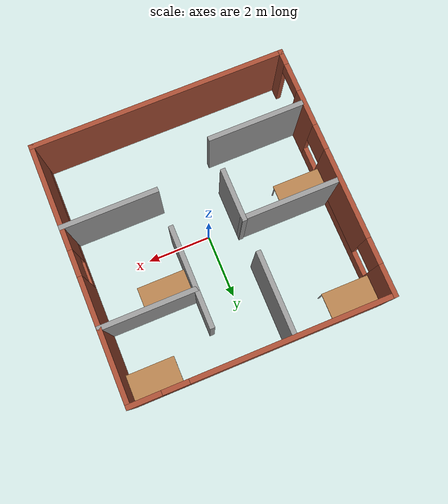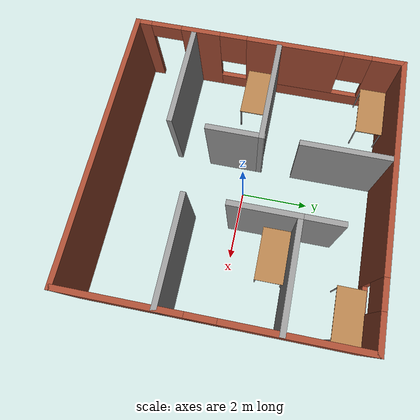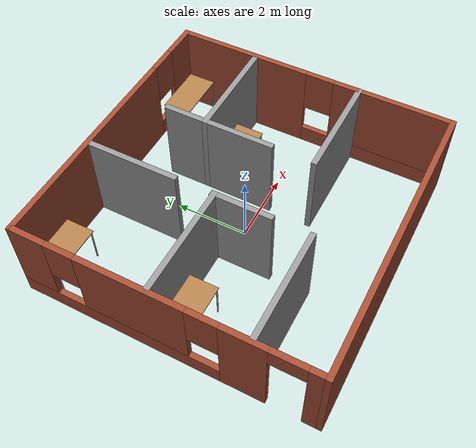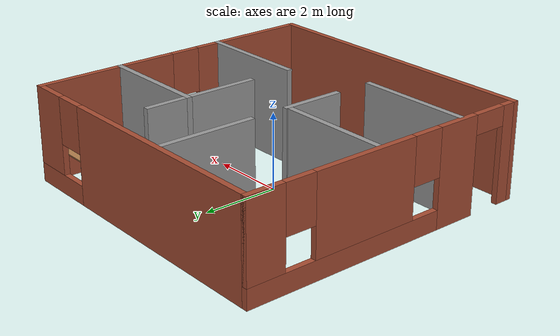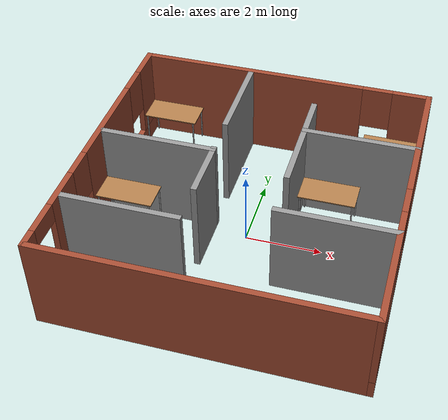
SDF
<sdf version="1.7">
 <model name="office">
  <link name="Wall_1">
   <pose>-0.000184 -3.925 0 0 -0 0</pose>
   <visual name="Wall_1_Visual">
    <pose>0 0 1.25 0 -0 0</pose>
    <geometry><box><size>8 0.15 2.5</size></box></geometry>
    <material>
     <script><uri>file://media/materials/scripts/gazebo.material</uri><name>Gazebo/Bricks</name></script>
     <ambient>1 1 1 1</ambient>
     <shader type="pixel"/>
    </material>
    <meta><layer>0</layer></meta>
   </visual>
   <collision name="Wall_1_Collision">
    <pose>0 0 1.25 0 -0 0</pose>
    <geometry><box><size>8 0.15 2.5</size></box></geometry>
    <surface>
     <friction>
      <ode><mu>1</mu><mu2>1</mu2><fdir1>0 0 0</fdir1><slip1>0</slip1><slip2>0</slip2></ode>
      <torsional>
       <coefficient>1</coefficient>
       <patch_radius>0</patch_radius>
       <surface_radius>0</surface_radius>
       <use_patch_radius>1</use_patch_radius>
       <ode><slip>0</slip></ode>
      </torsional>
     </friction>
     <bounce><restitution_coefficient>0</restitution_coefficient><threshold>1e+06</threshold></bounce>
     <contact>
      <collide_without_contact>0</collide_without_contact>
      <collide_without_contact_bitmask>1</collide_without_contact_bitmask>
      <collide_bitmask>1</collide_bitmask>
      <ode>
       <soft_cfm>0</soft_cfm>
       <soft_erp>0.2</soft_erp>
       <kp>1e+13</kp>
       <kd>1</kd>
       <max_vel>0.01</max_vel>
       <min_depth>0</min_depth>
      </ode>
      <bullet>
       <split_impulse>1</split_impulse>
       <split_impulse_penetration_threshold>-0.01</split_impulse_penetration_threshold>
       <soft_cfm>0</soft_cfm>
       <soft_erp>0.2</soft_erp>
       <kp>1e+13</kp>
       <kd>1</kd>
      </bullet>
     </contact>
    </surface>
   </collision>
  </link>
  <link name="Wall_12">
   <pose>2.49174 1.69053 0 0 -0 3.14159</pose>
   <visual name="Wall_12_Visual">
    <pose>0 0 1.25 0 -0 0</pose>
    <geometry><box><size>3 0.15 2.5</size></box></geometry>
    <material>
     <script><uri>file://media/materials/scripts/gazebo.material</uri><name>Gazebo/Grey</name></script>
     <ambient>1 1 1 1</ambient>
     <shader type="pixel"/>
    </material>
    <meta><layer>0</layer></meta>
   </visual>
   <collision name="Wall_12_Collision">
    <pose>0 0 1.25 0 -0 0</pose>
    <geometry><box><size>3 0.15 2.5</size></box></geometry>
    <surface>
     <friction>
      <ode><mu>1</mu><mu2>1</mu2><fdir1>0 0 0</fdir1><slip1>0</slip1><slip2>0</slip2></ode>
      <torsional>
       <coefficient>1</coefficient>
       <patch_radius>0</patch_radius>
       <surface_radius>0</surface_radius>
       <use_patch_radius>1</use_patch_radius>
       <ode><slip>0</slip></ode>
      </torsional>
     </friction>
     <bounce><restitution_coefficient>0</restitution_coefficient><threshold>1e+06</threshold></bounce>
     <contact>
      <collide_without_contact>0</collide_without_contact>
      <collide_without_contact_bitmask>1</collide_without_contact_bitmask>
      <collide_bitmask>1</collide_bitmask>
      <ode>
       <soft_cfm>0</soft_cfm>
       <soft_erp>0.2</soft_erp>
       <kp>1e+13</kp>
       <kd>1</kd>
       <max_vel>0.01</max_vel>
       <min_depth>0</min_depth>
      </ode>
      <bullet>
       <split_impulse>1</split_impulse>
       <split_impulse_penetration_threshold>-0.01</split_impulse_penetration_threshold>
       <soft_cfm>0</soft_cfm>
       <soft_erp>0.2</soft_erp>
       <kp>1e+13</kp>
       <kd>1</kd>
      </bullet>
     </contact>
    </surface>
   </collision>
  </link>
  <link name="Wall_13">
   <pose>1.06675 2.24053 0 0 -0 1.5708</pose>
   <visual name="Wall_13_Visual">
    <pose>0 0 1.25 0 -0 0</pose>
    <geometry><box><size>1.25 0.15 2.5</size></box></geometry>
    <material>
     <script><uri>file://media/materials/scripts/gazebo.material</uri><name>Gazebo/Grey</name></script>
     <ambient>1 1 1 1</ambient>
     <shader type="pixel"/>
    </material>
    <meta><layer>0</layer></meta>
   </visual>
   <collision name="Wall_13_Collision">
    <pose>0 0 1.25 0 -0 0</pose>
    <geometry><box><size>1.25 0.15 2.5</size></box></geometry>
    <surface>
     <friction>
      <ode><mu>1</mu><mu2>1</mu2><fdir1>0 0 0</fdir1><slip1>0</slip1><slip2>0</slip2></ode>
      <torsional>
       <coefficient>1</coefficient>
       <patch_radius>0</patch_radius>
       <surface_radius>0</surface_radius>
       <use_patch_radius>1</use_patch_radius>
       <ode><slip>0</slip></ode>
      </torsional>
     </friction>
     <bounce><restitution_coefficient>0</restitution_coefficient><threshold>1e+06</threshold></bounce>
     <contact>
      <collide_without_contact>0</collide_without_contact>
      <collide_without_contact_bitmask>1</collide_without_contact_bitmask>
      <collide_bitmask>1</collide_bitmask>
      <ode>
       <soft_cfm>0</soft_cfm>
       <soft_erp>0.2</soft_erp>
       <kp>1e+13</kp>
       <kd>1</kd>
       <max_vel>0.01</max_vel>
       <min_depth>0</min_depth>
      </ode>
      <bullet>
       <split_impulse>1</split_impulse>
       <split_impulse_penetration_threshold>-0.01</split_impulse_penetration_threshold>
       <soft_cfm>0</soft_cfm>
       <soft_erp>0.2</soft_erp>
       <kp>1e+13</kp>
       <kd>1</kd>
      </bullet>
     </contact>
    </surface>
   </collision>
  </link>
  <link name="Wall_17">
   <pose>-2.36974 0.32839 0 0 -0 0</pose>
   <visual name="Wall_17_Visual">
    <pose>0 0 1.25 0 -0 0</pose>
    <geometry><box><size>3.04046 0.15 2.5</size></box></geometry>
    <material>
     <script><uri>file://media/materials/scripts/gazebo.material</uri><name>Gazebo/Grey</name></script>
     <ambient>1 1 1 1</ambient>
     <shader type="pixel"/>
    </material>
    <meta><layer>0</layer></meta>
   </visual>
   <collision name="Wall_17_Collision">
    <pose>0 0 1.25 0 -0 0</pose>
    <geometry><box><size>3.04046 0.15 2.5</size></box></geometry>
    <surface>
     <friction>
      <ode><mu>1</mu><mu2>1</mu2><fdir1>0 0 0</fdir1><slip1>0</slip1><slip2>0</slip2></ode>
      <torsional>
       <coefficient>1</coefficient>
       <patch_radius>0</patch_radius>
       <surface_radius>0</surface_radius>
       <use_patch_radius>1</use_patch_radius>
       <ode><slip>0</slip></ode>
      </torsional>
     </friction>
     <bounce><restitution_coefficient>0</restitution_coefficient><threshold>1e+06</threshold></bounce>
     <contact>
      <collide_without_contact>0</collide_without_contact>
      <collide_without_contact_bitmask>1</collide_without_contact_bitmask>
      <collide_bitmask>1</collide_bitmask>
      <ode>
       <soft_cfm>0</soft_cfm>
       <soft_erp>0.2</soft_erp>
       <kp>1e+13</kp>
       <kd>1</kd>
       <max_vel>0.01</max_vel>
       <min_depth>0</min_depth>
      </ode>
      <bullet>
       <split_impulse>1</split_impulse>
       <split_impulse_penetration_threshold>-0.01</split_impulse_penetration_threshold>
       <soft_cfm>0</soft_cfm>
       <soft_erp>0.2</soft_erp>
       <kp>1e+13</kp>
       <kd>1</kd>
      </bullet>
     </contact>
    </surface>
   </collision>
  </link>
  <link name="Wall_20">
   <pose>-0.929909 2.60455 0 0 0 -1.5708</pose>
   <visual name="Wall_20_Visual">
    <pose>0 0 1.25 0 -0 0</pose>
    <geometry><box><size>2.5 0.15 2.5</size></box></geometry>
    <material>
     <script><uri>file://media/materials/scripts/gazebo.material</uri><name>Gazebo/Grey</name></script>
     <ambient>1 1 1 1</ambient>
     <shader type="pixel"/>
    </material>
    <meta><layer>0</layer></meta>
   </visual>
   <collision name="Wall_20_Collision">
    <pose>0 0 1.25 0 -0 0</pose>
    <geometry><box><size>2.5 0.15 2.5</size></box></geometry>
    <surface>
     <friction>
      <ode><mu>1</mu><mu2>1</mu2><fdir1>0 0 0</fdir1><slip1>0</slip1><slip2>0</slip2></ode>
      <torsional>
       <coefficient>1</coefficient>
       <patch_radius>0</patch_radius>
       <surface_radius>0</surface_radius>
       <use_patch_radius>1</use_patch_radius>
       <ode><slip>0</slip></ode>
      </torsional>
     </friction>
     <bounce><restitution_coefficient>0</restitution_coefficient><threshold>1e+06</threshold></bounce>
     <contact>
      <collide_without_contact>0</collide_without_contact>
      <collide_without_contact_bitmask>1</collide_without_contact_bitmask>
      <collide_bitmask>1</collide_bitmask>
      <ode>
       <soft_cfm>0</soft_cfm>
       <soft_erp>0.2</soft_erp>
       <kp>1e+13</kp>
       <kd>1</kd>
       <max_vel>0.01</max_vel>
       <min_depth>0</min_depth>
      </ode>
      <bullet>
       <split_impulse>1</split_impulse>
       <split_impulse_penetration_threshold>-0.01</split_impulse_penetration_threshold>
       <soft_cfm>0</soft_cfm>
       <soft_erp>0.2</soft_erp>
       <kp>1e+13</kp>
       <kd>1</kd>
      </bullet>
     </contact>
    </surface>
   </collision>
  </link>
  <link name="Wall_31">
   <pose>-2.38551 -2.21028 0 0 -0 0</pose>
   <visual name="Wall_31_Visual">
    <pose>0 0 1.25 0 -0 0</pose>
    <geometry><box><size>3 0.15 2.5</size></box></geometry>
    <material>
     <script><uri>file://media/materials/scripts/gazebo.material</uri><name>Gazebo/Grey</name></script>
     <ambient>1 1 1 1</ambient>
     <shader type="pixel"/>
    </material>
    <meta><layer>0</layer></meta>
   </visual>
   <collision name="Wall_31_Collision">
    <pose>0 0 1.25 0 -0 0</pose>
    <geometry><box><size>3 0.15 2.5</size></box></geometry>
    <surface>
     <friction>
      <ode><mu>1</mu><mu2>1</mu2><fdir1>0 0 0</fdir1><slip1>0</slip1><slip2>0</slip2></ode>
      <torsional>
       <coefficient>1</coefficient>
       <patch_radius>0</patch_radius>
       <surface_radius>0</surface_radius>
       <use_patch_radius>1</use_patch_radius>
       <ode><slip>0</slip></ode>
      </torsional>
     </friction>
     <bounce><restitution_coefficient>0</restitution_coefficient><threshold>1e+06</threshold></bounce>
     <contact>
      <collide_without_contact>0</collide_without_contact>
      <collide_without_contact_bitmask>1</collide_without_contact_bitmask>
      <collide_bitmask>1</collide_bitmask>
      <ode>
       <soft_cfm>0</soft_cfm>
       <soft_erp>0.2</soft_erp>
       <kp>1e+13</kp>
       <kd>1</kd>
       <max_vel>0.01</max_vel>
       <min_depth>0</min_depth>
      </ode>
      <bullet>
       <split_impulse>1</split_impulse>
       <split_impulse_penetration_threshold>-0.01</split_impulse_penetration_threshold>
       <soft_cfm>0</soft_cfm>
       <soft_erp>0.2</soft_erp>
       <kp>1e+13</kp>
       <kd>1</kd>
      </bullet>
     </contact>
    </surface>
   </collision>
  </link>
  <link name="Wall_33">
   <pose>-0.924514 -0.397442 0 0 -0 1.5708</pose>
   <visual name="Wall_33_Visual">
    <pose>0 0 1.25 0 -0 0</pose>
    <geometry><box><size>1.6556 0.15 2.5</size></box></geometry>
    <material>
     <script><uri>file://media/materials/scripts/gazebo.material</uri><name>Gazebo/Grey</name></script>
     <ambient>1 1 1 1</ambient>
     <shader type="pixel"/>
    </material>
    <meta><layer>0</layer></meta>
   </visual>
   <collision name="Wall_33_Collision">
    <pose>0 0 1.25 0 -0 0</pose>
    <geometry><box><size>1.6556 0.15 2.5</size></box></geometry>
    <surface>
     <friction>
      <ode><mu>1</mu><mu2>1</mu2><fdir1>0 0 0</fdir1><slip1>0</slip1><slip2>0</slip2></ode>
      <torsional>
       <coefficient>1</coefficient>
       <patch_radius>0</patch_radius>
       <surface_radius>0</surface_radius>
       <use_patch_radius>1</use_patch_radius>
       <ode><slip>0</slip></ode>
      </torsional>
     </friction>
     <bounce><restitution_coefficient>0</restitution_coefficient><threshold>1e+06</threshold></bounce>
     <contact>
      <collide_without_contact>0</collide_without_contact>
      <collide_without_contact_bitmask>1</collide_without_contact_bitmask>
      <collide_bitmask>1</collide_bitmask>
      <ode>
       <soft_cfm>0</soft_cfm>
       <soft_erp>0.2</soft_erp>
       <kp>1e+13</kp>
       <kd>1</kd>
       <max_vel>0.01</max_vel>
       <min_depth>0</min_depth>
      </ode>
      <bullet>
       <split_impulse>1</split_impulse>
       <split_impulse_penetration_threshold>-0.01</split_impulse_penetration_threshold>
       <soft_cfm>0</soft_cfm>
       <soft_erp>0.2</soft_erp>
       <kp>1e+13</kp>
       <kd>1</kd>
      </bullet>
     </contact>
    </surface>
   </collision>
  </link>
  <link name="Wall_38">
   <pose>2.50019 -1.35896 0 0 -0 0</pose>
   <visual name="Wall_38_Visual">
    <pose>0 0 1.25 0 -0 0</pose>
    <geometry><box><size>3 0.15 2.5</size></box></geometry>
    <material>
     <script><uri>file://media/materials/scripts/gazebo.material</uri><name>Gazebo/Grey</name></script>
     <ambient>1 1 1 1</ambient>
     <shader type="pixel"/>
    </material>
    <meta><layer>0</layer></meta>
   </visual>
   <collision name="Wall_38_Collision">
    <pose>0 0 1.25 0 -0 0</pose>
    <geometry><box><size>3 0.15 2.5</size></box></geometry>
    <surface>
     <friction>
      <ode><mu>1</mu><mu2>1</mu2><fdir1>0 0 0</fdir1><slip1>0</slip1><slip2>0</slip2></ode>
      <torsional>
       <coefficient>1</coefficient>
       <patch_radius>0</patch_radius>
       <surface_radius>0</surface_radius>
       <use_patch_radius>1</use_patch_radius>
       <ode><slip>0</slip></ode>
      </torsional>
     </friction>
     <bounce><restitution_coefficient>0</restitution_coefficient><threshold>1e+06</threshold></bounce>
     <contact>
      <collide_without_contact>0</collide_without_contact>
      <collide_without_contact_bitmask>1</collide_without_contact_bitmask>
      <collide_bitmask>1</collide_bitmask>
      <ode>
       <soft_cfm>0</soft_cfm>
       <soft_erp>0.2</soft_erp>
       <kp>1e+13</kp>
       <kd>1</kd>
       <max_vel>0.01</max_vel>
       <min_depth>0</min_depth>
      </ode>
      <bullet>
       <split_impulse>1</split_impulse>
       <split_impulse_penetration_threshold>-0.01</split_impulse_penetration_threshold>
       <soft_cfm>0</soft_cfm>
       <soft_erp>0.2</soft_erp>
       <kp>1e+13</kp>
       <kd>1</kd>
      </bullet>
     </contact>
    </surface>
   </collision>
  </link>
  <link name="Wall_4">
   <pose>-3.92518 0 0 0 -0 1.5708</pose>
   <visual name="Wall_4_Visual_0">
    <pose>-3.75034 0 1.25 0 -0 0</pose>
    <geometry><box><size>0.499317 0.15 2.5</size></box></geometry>
    <material>
     <script><uri>file://media/materials/scripts/gazebo.material</uri><name>Gazebo/Bricks</name></script>
     <ambient>1 1 1 1</ambient>
     <shader type="pixel"/>
    </material>
    <meta><layer>0</layer></meta>
   </visual>
   <visual name="Wall_4_Visual_1">
    <pose>-2.02188 0 1.25 0 -0 0</pose>
    <geometry><box><size>1.15762 0.15 2.5</size></box></geometry>
    <material>
     <script><uri>file://media/materials/scripts/gazebo.material</uri><name>Gazebo/Bricks</name></script>
     <ambient>1 1 1 1</ambient>
     <shader type="pixel"/>
    </material>
    <meta><layer>0</layer></meta>
   </visual>
   <visual name="Wall_4_Visual_2">
    <pose>1.27847 0 0.25 0 -0 0</pose>
    <geometry><box><size>5.44307 0.15 0.5</size></box></geometry>
    <material>
     <script><uri>file://media/materials/scripts/gazebo.material</uri><name>Gazebo/Bricks</name></script>
     <ambient>1 1 1 1</ambient>
     <shader type="pixel"/>
    </material>
    <meta><layer>0</layer></meta>
   </visual>
   <visual name="Wall_4_Visual_3">
    <pose>0.775576 0 1.5 0 -0 0</pose>
    <geometry><box><size>2.83728 0.15 2</size></box></geometry>
    <material>
     <script><uri>file://media/materials/scripts/gazebo.material</uri><name>Gazebo/Bricks</name></script>
     <ambient>1 1 1 1</ambient>
     <shader type="pixel"/>
    </material>
    <meta><layer>0</layer></meta>
   </visual>
   <visual name="Wall_4_Visual_4">
    <pose>3.49711 0 1.5 0 -0 0</pose>
    <geometry><box><size>1.00578 0.15 2</size></box></geometry>
    <material>
     <script><uri>file://media/materials/scripts/gazebo.material</uri><name>Gazebo/Bricks</name></script>
     <ambient>1 1 1 1</ambient>
     <shader type="pixel"/>
    </material>
    <meta><layer>0</layer></meta>
   </visual>
   <visual name="Wall_4_Visual_5">
    <pose>-1.04307 0 1.9 0 -0 0</pose>
    <geometry><box><size>0.8 0.15 1.2</size></box></geometry>
    <material>
     <script><uri>file://media/materials/scripts/gazebo.material</uri><name>Gazebo/Bricks</name></script>
     <ambient>1 1 1 1</ambient>
     <shader type="pixel"/>
    </material>
    <meta><layer>0</layer></meta>
   </visual>
   <visual name="Wall_4_Visual_6">
    <pose>2.59422 0 1.9 0 -0 0</pose>
    <geometry><box><size>0.8 0.15 1.2</size></box></geometry>
    <material>
     <script><uri>file://media/materials/scripts/gazebo.material</uri><name>Gazebo/Bricks</name></script>
     <ambient>1 1 1 1</ambient>
     <shader type="pixel"/>
    </material>
    <meta><layer>0</layer></meta>
   </visual>
   <visual name="Wall_4_Visual_7">
    <pose>-3.05068 0 2.25 0 -0 0</pose>
    <geometry><box><size>0.9 0.15 0.5</size></box></geometry>
    <material>
     <script><uri>file://media/materials/scripts/gazebo.material</uri><name>Gazebo/Bricks</name></script>
     <ambient>1 1 1 1</ambient>
     <shader type="pixel"/>
    </material>
    <meta><layer>0</layer></meta>
   </visual>
   <collision name="Wall_4_Collision_0">
    <pose>-3.75034 0 1.25 0 -0 0</pose>
    <geometry><box><size>0.499317 0.15 2.5</size></box></geometry>
    <surface>
     <friction>
      <ode><mu>1</mu><mu2>1</mu2><fdir1>0 0 0</fdir1><slip1>0</slip1><slip2>0</slip2></ode>
      <torsional>
       <coefficient>1</coefficient>
       <patch_radius>0</patch_radius>
       <surface_radius>0</surface_radius>
       <use_patch_radius>1</use_patch_radius>
       <ode><slip>0</slip></ode>
      </torsional>
     </friction>
     <bounce><restitution_coefficient>0</restitution_coefficient><threshold>1e+06</threshold></bounce>
     <contact>
      <collide_without_contact>0</collide_without_contact>
      <collide_without_contact_bitmask>1</collide_without_contact_bitmask>
      <collide_bitmask>1</collide_bitmask>
      <ode>
       <soft_cfm>0</soft_cfm>
       <soft_erp>0.2</soft_erp>
       <kp>1e+13</kp>
       <kd>1</kd>
       <max_vel>0.01</max_vel>
       <min_depth>0</min_depth>
      </ode>
      <bullet>
       <split_impulse>1</split_impulse>
       <split_impulse_penetration_threshold>-0.01</split_impulse_penetration_threshold>
       <soft_cfm>0</soft_cfm>
       <soft_erp>0.2</soft_erp>
       <kp>1e+13</kp>
       <kd>1</kd>
      </bullet>
     </contact>
    </surface>
   </collision>
   <collision name="Wall_4_Collision_1">
    <pose>-2.02188 0 1.25 0 -0 0</pose>
    <geometry><box><size>1.15762 0.15 2.5</size></box></geometry>
    <surface>
     <friction>
      <ode><mu>1</mu><mu2>1</mu2><fdir1>0 0 0</fdir1><slip1>0</slip1><slip2>0</slip2></ode>
      <torsional>
       <coefficient>1</coefficient>
       <patch_radius>0</patch_radius>
       <surface_radius>0</surface_radius>
       <use_patch_radius>1</use_patch_radius>
       <ode><slip>0</slip></ode>
      </torsional>
     </friction>
     <bounce><restitution_coefficient>0</restitution_coefficient><threshold>1e+06</threshold></bounce>
     <contact>
      <collide_without_contact>0</collide_without_contact>
      <collide_without_contact_bitmask>1</collide_without_contact_bitmask>
      <collide_bitmask>1</collide_bitmask>
      <ode>
       <soft_cfm>0</soft_cfm>
       <soft_erp>0.2</soft_erp>
       <kp>1e+13</kp>
       <kd>1</kd>
       <max_vel>0.01</max_vel>
       <min_depth>0</min_depth>
      </ode>
      <bullet>
       <split_impulse>1</split_impulse>
       <split_impulse_penetration_threshold>-0.01</split_impulse_penetration_threshold>
       <soft_cfm>0</soft_cfm>
       <soft_erp>0.2</soft_erp>
       <kp>1e+13</kp>
       <kd>1</kd>
      </bullet>
     </contact>
    </surface>
   </collision>
   <collision name="Wall_4_Collision_2">
    <pose>1.27847 0 0.25 0 -0 0</pose>
    <geometry><box><size>5.44307 0.15 0.5</size></box></geometry>
    <surface>
     <friction>
      <ode><mu>1</mu><mu2>1</mu2><fdir1>0 0 0</fdir1><slip1>0</slip1><slip2>0</slip2></ode>
      <torsional>
       <coefficient>1</coefficient>
       <patch_radius>0</patch_radius>
       <surface_radius>0</surface_radius>
       <use_patch_radius>1</use_patch_radius>
       <ode><slip>0</slip></ode>
      </torsional>
     </friction>
     <bounce><restitution_coefficient>0</restitution_coefficient><threshold>1e+06</threshold></bounce>
     <contact>
      <collide_without_contact>0</collide_without_contact>
      <collide_without_contact_bitmask>1</collide_without_contact_bitmask>
      <collide_bitmask>1</collide_bitmask>
      <ode>
       <soft_cfm>0</soft_cfm>
       <soft_erp>0.2</soft_erp>
       <kp>1e+13</kp>
       <kd>1</kd>
       <max_vel>0.01</max_vel>
       <min_depth>0</min_depth>
      </ode>
      <bullet>
       <split_impulse>1</split_impulse>
       <split_impulse_penetration_threshold>-0.01</split_impulse_penetration_threshold>
       <soft_cfm>0</soft_cfm>
       <soft_erp>0.2</soft_erp>
       <kp>1e+13</kp>
       <kd>1</kd>
      </bullet>
     </contact>
    </surface>
   </collision>
   <collision name="Wall_4_Collision_3">
    <pose>0.775576 0 1.5 0 -0 0</pose>
    <geometry><box><size>2.83728 0.15 2</size></box></geometry>
    <surface>
     <friction>
      <ode><mu>1</mu><mu2>1</mu2><fdir1>0 0 0</fdir1><slip1>0</slip1><slip2>0</slip2></ode>
      <torsional>
       <coefficient>1</coefficient>
       <patch_radius>0</patch_radius>
       <surface_radius>0</surface_radius>
       <use_patch_radius>1</use_patch_radius>
       <ode><slip>0</slip></ode>
      </torsional>
     </friction>
     <bounce><restitution_coefficient>0</restitution_coefficient><threshold>1e+06</threshold></bounce>
     <contact>
      <collide_without_contact>0</collide_without_contact>
      <collide_without_contact_bitmask>1</collide_without_contact_bitmask>
      <collide_bitmask>1</collide_bitmask>
      <ode>
       <soft_cfm>0</soft_cfm>
       <soft_erp>0.2</soft_erp>
       <kp>1e+13</kp>
       <kd>1</kd>
       <max_vel>0.01</max_vel>
       <min_depth>0</min_depth>
      </ode>
      <bullet>
       <split_impulse>1</split_impulse>
       <split_impulse_penetration_threshold>-0.01</split_impulse_penetration_threshold>
       <soft_cfm>0</soft_cfm>
       <soft_erp>0.2</soft_erp>
       <kp>1e+13</kp>
       <kd>1</kd>
      </bullet>
     </contact>
    </surface>
   </collision>
   <collision name="Wall_4_Collision_4">
    <pose>3.49711 0 1.5 0 -0 0</pose>
    <geometry><box><size>1.00578 0.15 2</size></box></geometry>
    <surface>
     <friction>
      <ode><mu>1</mu><mu2>1</mu2><fdir1>0 0 0</fdir1><slip1>0</slip1><slip2>0</slip2></ode>
      <torsional>
       <coefficient>1</coefficient>
       <patch_radius>0</patch_radius>
       <surface_radius>0</surface_radius>
       <use_patch_radius>1</use_patch_radius>
       <ode><slip>0</slip></ode>
      </torsional>
     </friction>
     <bounce><restitution_coefficient>0</restitution_coefficient><threshold>1e+06</threshold></bounce>
     <contact>
      <collide_without_contact>0</collide_without_contact>
      <collide_without_contact_bitmask>1</collide_without_contact_bitmask>
      <collide_bitmask>1</collide_bitmask>
      <ode>
       <soft_cfm>0</soft_cfm>
       <soft_erp>0.2</soft_erp>
       <kp>1e+13</kp>
       <kd>1</kd>
       <max_vel>0.01</max_vel>
       <min_depth>0</min_depth>
      </ode>
      <bullet>
       <split_impulse>1</split_impulse>
       <split_impulse_penetration_threshold>-0.01</split_impulse_penetration_threshold>
       <soft_cfm>0</soft_cfm>
       <soft_erp>0.2</soft_erp>
       <kp>1e+13</kp>
       <kd>1</kd>
      </bullet>
     </contact>
    </surface>
   </collision>
   <collision name="Wall_4_Collision_5">
    <pose>-1.04307 0 1.9 0 -0 0</pose>
    <geometry><box><size>0.8 0.15 1.2</size></box></geometry>
    <surface>
     <friction>
      <ode><mu>1</mu><mu2>1</mu2><fdir1>0 0 0</fdir1><slip1>0</slip1><slip2>0</slip2></ode>
      <torsional>
       <coefficient>1</coefficient>
       <patch_radius>0</patch_radius>
       <surface_radius>0</surface_radius>
       <use_patch_radius>1</use_patch_radius>
       <ode><slip>0</slip></ode>
      </torsional>
     </friction>
     <bounce><restitution_coefficient>0</restitution_coefficient><threshold>1e+06</threshold></bounce>
     <contact>
      <collide_without_contact>0</collide_without_contact>
      <collide_without_contact_bitmask>1</collide_without_contact_bitmask>
      <collide_bitmask>1</collide_bitmask>
      <ode>
       <soft_cfm>0</soft_cfm>
       <soft_erp>0.2</soft_erp>
       <kp>1e+13</kp>
       <kd>1</kd>
       <max_vel>0.01</max_vel>
       <min_depth>0</min_depth>
      </ode>
      <bullet>
       <split_impulse>1</split_impulse>
       <split_impulse_penetration_threshold>-0.01</split_impulse_penetration_threshold>
       <soft_cfm>0</soft_cfm>
       <soft_erp>0.2</soft_erp>
       <kp>1e+13</kp>
       <kd>1</kd>
      </bullet>
     </contact>
    </surface>
   </collision>
   <collision name="Wall_4_Collision_6">
    <pose>2.59422 0 1.9 0 -0 0</pose>
    <geometry><box><size>0.8 0.15 1.2</size></box></geometry>
    <surface>
     <friction>
      <ode><mu>1</mu><mu2>1</mu2><fdir1>0 0 0</fdir1><slip1>0</slip1><slip2>0</slip2></ode>
      <torsional>
       <coefficient>1</coefficient>
       <patch_radius>0</patch_radius>
       <surface_radius>0</surface_radius>
       <use_patch_radius>1</use_patch_radius>
       <ode><slip>0</slip></ode>
      </torsional>
     </friction>
     <bounce><restitution_coefficient>0</restitution_coefficient><threshold>1e+06</threshold></bounce>
     <contact>
      <collide_without_contact>0</collide_without_contact>
      <collide_without_contact_bitmask>1</collide_without_contact_bitmask>
      <collide_bitmask>1</collide_bitmask>
      <ode>
       <soft_cfm>0</soft_cfm>
       <soft_erp>0.2</soft_erp>
       <kp>1e+13</kp>
       <kd>1</kd>
       <max_vel>0.01</max_vel>
       <min_depth>0</min_depth>
      </ode>
      <bullet>
       <split_impulse>1</split_impulse>
       <split_impulse_penetration_threshold>-0.01</split_impulse_penetration_threshold>
       <soft_cfm>0</soft_cfm>
       <soft_erp>0.2</soft_erp>
       <kp>1e+13</kp>
       <kd>1</kd>
      </bullet>
     </contact>
    </surface>
   </collision>
   <collision name="Wall_4_Collision_7">
    <pose>-3.05068 0 2.25 0 -0 0</pose>
    <geometry><box><size>0.9 0.15 0.5</size></box></geometry>
    <surface>
     <friction>
      <ode><mu>1</mu><mu2>1</mu2><fdir1>0 0 0</fdir1><slip1>0</slip1><slip2>0</slip2></ode>
      <torsional>
       <coefficient>1</coefficient>
       <patch_radius>0</patch_radius>
       <surface_radius>0</surface_radius>
       <use_patch_radius>1</use_patch_radius>
       <ode><slip>0</slip></ode>
      </torsional>
     </friction>
     <bounce><restitution_coefficient>0</restitution_coefficient><threshold>1e+06</threshold></bounce>
     <contact>
      <collide_without_contact>0</collide_without_contact>
      <collide_without_contact_bitmask>1</collide_without_contact_bitmask>
      <collide_bitmask>1</collide_bitmask>
      <ode>
       <soft_cfm>0</soft_cfm>
       <soft_erp>0.2</soft_erp>
       <kp>1e+13</kp>
       <kd>1</kd>
       <max_vel>0.01</max_vel>
       <min_depth>0</min_depth>
      </ode>
      <bullet>
       <split_impulse>1</split_impulse>
       <split_impulse_penetration_threshold>-0.01</split_impulse_penetration_threshold>
       <soft_cfm>0</soft_cfm>
       <soft_erp>0.2</soft_erp>
       <kp>1e+13</kp>
       <kd>1</kd>
      </bullet>
     </contact>
    </surface>
   </collision>
  </link>
  <link name="Wall_40">
   <pose>1.06675 0.765526 0 0 0 -1.5708</pose>
   <visual name="Wall_40_Visual">
    <pose>0 0 1.25 0 -0 0</pose>
    <geometry><box><size>2 0.15 2.5</size></box></geometry>
    <material>
     <script><uri>file://media/materials/scripts/gazebo.material</uri><name>Gazebo/Grey</name></script>
     <ambient>1 1 1 1</ambient>
     <shader type="pixel"/>
    </material>
    <meta><layer>0</layer></meta>
   </visual>
   <collision name="Wall_40_Collision">
    <pose>0 0 1.25 0 -0 0</pose>
    <geometry><box><size>2 0.15 2.5</size></box></geometry>
    <surface>
     <friction>
      <ode><mu>1</mu><mu2>1</mu2><fdir1>0 0 0</fdir1><slip1>0</slip1><slip2>0</slip2></ode>
      <torsional>
       <coefficient>1</coefficient>
       <patch_radius>0</patch_radius>
       <surface_radius>0</surface_radius>
       <use_patch_radius>1</use_patch_radius>
       <ode><slip>0</slip></ode>
      </torsional>
     </friction>
     <bounce><restitution_coefficient>0</restitution_coefficient><threshold>1e+06</threshold></bounce>
     <contact>
      <collide_without_contact>0</collide_without_contact>
      <collide_without_contact_bitmask>1</collide_without_contact_bitmask>
      <collide_bitmask>1</collide_bitmask>
      <ode>
       <soft_cfm>0</soft_cfm>
       <soft_erp>0.2</soft_erp>
       <kp>1e+13</kp>
       <kd>1</kd>
       <max_vel>0.01</max_vel>
       <min_depth>0</min_depth>
      </ode>
      <bullet>
       <split_impulse>1</split_impulse>
       <split_impulse_penetration_threshold>-0.01</split_impulse_penetration_threshold>
       <soft_cfm>0</soft_cfm>
       <soft_erp>0.2</soft_erp>
       <kp>1e+13</kp>
       <kd>1</kd>
      </bullet>
     </contact>
    </surface>
   </collision>
  </link>
  <link name="Wall_5">
   <pose>-0.000184 3.925 0 0 -0 0</pose>
   <visual name="Wall_5_Visual_0">
    <pose>-0.916969 0 1.25 0 -0 0</pose>
    <geometry><box><size>6.16606 0.15 2.5</size></box></geometry>
    <material>
     <script><uri>file://media/materials/scripts/gazebo.material</uri><name>Gazebo/Bricks</name></script>
     <ambient>1 1 1 1</ambient>
     <shader type="pixel"/>
    </material>
    <meta><layer>0</layer></meta>
   </visual>
   <visual name="Wall_5_Visual_1">
    <pose>3.08303 0 0.25 0 -0 0</pose>
    <geometry><box><size>1.83394 0.15 0.5</size></box></geometry>
    <material>
     <script><uri>file://media/materials/scripts/gazebo.material</uri><name>Gazebo/Bricks</name></script>
     <ambient>1 1 1 1</ambient>
     <shader type="pixel"/>
    </material>
    <meta><layer>0</layer></meta>
   </visual>
   <visual name="Wall_5_Visual_2">
    <pose>3.48303 0 1.5 0 -0 0</pose>
    <geometry><box><size>1.03394 0.15 2</size></box></geometry>
    <material>
     <script><uri>file://media/materials/scripts/gazebo.material</uri><name>Gazebo/Bricks</name></script>
     <ambient>1 1 1 1</ambient>
     <shader type="pixel"/>
    </material>
    <meta><layer>0</layer></meta>
   </visual>
   <visual name="Wall_5_Visual_3">
    <pose>2.56606 0 1.9 0 -0 0</pose>
    <geometry><box><size>0.8 0.15 1.2</size></box></geometry>
    <material>
     <script><uri>file://media/materials/scripts/gazebo.material</uri><name>Gazebo/Bricks</name></script>
     <ambient>1 1 1 1</ambient>
     <shader type="pixel"/>
    </material>
    <meta><layer>0</layer></meta>
   </visual>
   <collision name="Wall_5_Collision_0">
    <pose>-0.916969 0 1.25 0 -0 0</pose>
    <geometry><box><size>6.16606 0.15 2.5</size></box></geometry>
    <surface>
     <friction>
      <ode><mu>1</mu><mu2>1</mu2><fdir1>0 0 0</fdir1><slip1>0</slip1><slip2>0</slip2></ode>
      <torsional>
       <coefficient>1</coefficient>
       <patch_radius>0</patch_radius>
       <surface_radius>0</surface_radius>
       <use_patch_radius>1</use_patch_radius>
       <ode><slip>0</slip></ode>
      </torsional>
     </friction>
     <bounce><restitution_coefficient>0</restitution_coefficient><threshold>1e+06</threshold></bounce>
     <contact>
      <collide_without_contact>0</collide_without_contact>
      <collide_without_contact_bitmask>1</collide_without_contact_bitmask>
      <collide_bitmask>1</collide_bitmask>
      <ode>
       <soft_cfm>0</soft_cfm>
       <soft_erp>0.2</soft_erp>
       <kp>1e+13</kp>
       <kd>1</kd>
       <max_vel>0.01</max_vel>
       <min_depth>0</min_depth>
      </ode>
      <bullet>
       <split_impulse>1</split_impulse>
       <split_impulse_penetration_threshold>-0.01</split_impulse_penetration_threshold>
       <soft_cfm>0</soft_cfm>
       <soft_erp>0.2</soft_erp>
       <kp>1e+13</kp>
       <kd>1</kd>
      </bullet>
     </contact>
    </surface>
   </collision>
   <collision name="Wall_5_Collision_1">
    <pose>3.08303 0 0.25 0 -0 0</pose>
    <geometry><box><size>1.83394 0.15 0.5</size></box></geometry>
    <surface>
     <friction>
      <ode><mu>1</mu><mu2>1</mu2><fdir1>0 0 0</fdir1><slip1>0</slip1><slip2>0</slip2></ode>
      <torsional>
       <coefficient>1</coefficient>
       <patch_radius>0</patch_radius>
       <surface_radius>0</surface_radius>
       <use_patch_radius>1</use_patch_radius>
       <ode><slip>0</slip></ode>
      </torsional>
     </friction>
     <bounce><restitution_coefficient>0</restitution_coefficient><threshold>1e+06</threshold></bounce>
     <contact>
      <collide_without_contact>0</collide_without_contact>
      <collide_without_contact_bitmask>1</collide_without_contact_bitmask>
      <collide_bitmask>1</collide_bitmask>
      <ode>
       <soft_cfm>0</soft_cfm>
       <soft_erp>0.2</soft_erp>
       <kp>1e+13</kp>
       <kd>1</kd>
       <max_vel>0.01</max_vel>
       <min_depth>0</min_depth>
      </ode>
      <bullet>
       <split_impulse>1</split_impulse>
       <split_impulse_penetration_threshold>-0.01</split_impulse_penetration_threshold>
       <soft_cfm>0</soft_cfm>
       <soft_erp>0.2</soft_erp>
       <kp>1e+13</kp>
       <kd>1</kd>
      </bullet>
     </contact>
    </surface>
   </collision>
   <collision name="Wall_5_Collision_2">
    <pose>3.48303 0 1.5 0 -0 0</pose>
    <geometry><box><size>1.03394 0.15 2</size></box></geometry>
    <surface>
     <friction>
      <ode><mu>1</mu><mu2>1</mu2><fdir1>0 0 0</fdir1><slip1>0</slip1><slip2>0</slip2></ode>
      <torsional>
       <coefficient>1</coefficient>
       <patch_radius>0</patch_radius>
       <surface_radius>0</surface_radius>
       <use_patch_radius>1</use_patch_radius>
       <ode><slip>0</slip></ode>
      </torsional>
     </friction>
     <bounce><restitution_coefficient>0</restitution_coefficient><threshold>1e+06</threshold></bounce>
     <contact>
      <collide_without_contact>0</collide_without_contact>
      <collide_without_contact_bitmask>1</collide_without_contact_bitmask>
      <collide_bitmask>1</collide_bitmask>
      <ode>
       <soft_cfm>0</soft_cfm>
       <soft_erp>0.2</soft_erp>
       <kp>1e+13</kp>
       <kd>1</kd>
       <max_vel>0.01</max_vel>
       <min_depth>0</min_depth>
      </ode>
      <bullet>
       <split_impulse>1</split_impulse>
       <split_impulse_penetration_threshold>-0.01</split_impulse_penetration_threshold>
       <soft_cfm>0</soft_cfm>
       <soft_erp>0.2</soft_erp>
       <kp>1e+13</kp>
       <kd>1</kd>
      </bullet>
     </contact>
    </surface>
   </collision>
   <collision name="Wall_5_Collision_3">
    <pose>2.56606 0 1.9 0 -0 0</pose>
    <geometry><box><size>0.8 0.15 1.2</size></box></geometry>
    <surface>
     <friction>
      <ode><mu>1</mu><mu2>1</mu2><fdir1>0 0 0</fdir1><slip1>0</slip1><slip2>0</slip2></ode>
      <torsional>
       <coefficient>1</coefficient>
       <patch_radius>0</patch_radius>
       <surface_radius>0</surface_radius>
       <use_patch_radius>1</use_patch_radius>
       <ode><slip>0</slip></ode>
      </torsional>
     </friction>
     <bounce><restitution_coefficient>0</restitution_coefficient><threshold>1e+06</threshold></bounce>
     <contact>
      <collide_without_contact>0</collide_without_contact>
      <collide_without_contact_bitmask>1</collide_without_contact_bitmask>
      <collide_bitmask>1</collide_bitmask>
      <ode>
       <soft_cfm>0</soft_cfm>
       <soft_erp>0.2</soft_erp>
       <kp>1e+13</kp>
       <kd>1</kd>
       <max_vel>0.01</max_vel>
       <min_depth>0</min_depth>
      </ode>
      <bullet>
       <split_impulse>1</split_impulse>
       <split_impulse_penetration_threshold>-0.01</split_impulse_penetration_threshold>
       <soft_cfm>0</soft_cfm>
       <soft_erp>0.2</soft_erp>
       <kp>1e+13</kp>
       <kd>1</kd>
      </bullet>
     </contact>
    </surface>
   </collision>
  </link>
  <link name="Wall_6">
   <pose>3.92482 0 0 0 0 -1.5708</pose>
   <visual name="Wall_6_Visual_0">
    <pose>-2.07478 0 1.25 0 -0 0</pose>
    <geometry><box><size>3.85043 0.15 2.5</size></box></geometry>
    <material>
     <script><uri>file://media/materials/scripts/gazebo.material</uri><name>Gazebo/Bricks</name></script>
     <ambient>1 1 1 1</ambient>
     <shader type="pixel"/>
    </material>
    <meta><layer>0</layer></meta>
   </visual>
   <visual name="Wall_6_Visual_1">
    <pose>1.92522 0 0.25 0 -0 0</pose>
    <geometry><box><size>4.14957 0.15 0.5</size></box></geometry>
    <material>
     <script><uri>file://media/materials/scripts/gazebo.material</uri><name>Gazebo/Bricks</name></script>
     <ambient>1 1 1 1</ambient>
     <shader type="pixel"/>
    </material>
    <meta><layer>0</layer></meta>
   </visual>
   <visual name="Wall_6_Visual_2">
    <pose>2.32522 0 1.5 0 -0 0</pose>
    <geometry><box><size>3.34957 0.15 2</size></box></geometry>
    <material>
     <script><uri>file://media/materials/scripts/gazebo.material</uri><name>Gazebo/Bricks</name></script>
     <ambient>1 1 1 1</ambient>
     <shader type="pixel"/>
    </material>
    <meta><layer>0</layer></meta>
   </visual>
   <visual name="Wall_6_Visual_3">
    <pose>0.250431 0 1.9 0 -0 0</pose>
    <geometry><box><size>0.8 0.15 1.2</size></box></geometry>
    <material>
     <script><uri>file://media/materials/scripts/gazebo.material</uri><name>Gazebo/Bricks</name></script>
     <ambient>1 1 1 1</ambient>
     <shader type="pixel"/>
    </material>
    <meta><layer>0</layer></meta>
   </visual>
   <collision name="Wall_6_Collision_0">
    <pose>-2.07478 0 1.25 0 -0 0</pose>
    <geometry><box><size>3.85043 0.15 2.5</size></box></geometry>
    <surface>
     <friction>
      <ode><mu>1</mu><mu2>1</mu2><fdir1>0 0 0</fdir1><slip1>0</slip1><slip2>0</slip2></ode>
      <torsional>
       <coefficient>1</coefficient>
       <patch_radius>0</patch_radius>
       <surface_radius>0</surface_radius>
       <use_patch_radius>1</use_patch_radius>
       <ode><slip>0</slip></ode>
      </torsional>
     </friction>
     <bounce><restitution_coefficient>0</restitution_coefficient><threshold>1e+06</threshold></bounce>
     <contact>
      <collide_without_contact>0</collide_without_contact>
      <collide_without_contact_bitmask>1</collide_without_contact_bitmask>
      <collide_bitmask>1</collide_bitmask>
      <ode>
       <soft_cfm>0</soft_cfm>
       <soft_erp>0.2</soft_erp>
       <kp>1e+13</kp>
       <kd>1</kd>
       <max_vel>0.01</max_vel>
       <min_depth>0</min_depth>
      </ode>
      <bullet>
       <split_impulse>1</split_impulse>
       <split_impulse_penetration_threshold>-0.01</split_impulse_penetration_threshold>
       <soft_cfm>0</soft_cfm>
       <soft_erp>0.2</soft_erp>
       <kp>1e+13</kp>
       <kd>1</kd>
      </bullet>
     </contact>
    </surface>
   </collision>
   <collision name="Wall_6_Collision_2">
    <pose>2.32522 0 1.5 0 -0 0</pose>
    <geometry><box><size>3.34957 0.15 2</size></box></geometry>
    <surface>
     <friction>
      <ode><mu>1</mu><mu2>1</mu2><fdir1>0 0 0</fdir1><slip1>0</slip1><slip2>0</slip2></ode>
      <torsional>
       <coefficient>1</coefficient>
       <patch_radius>0</patch_radius>
       <surface_radius>0</surface_radius>
       <use_patch_radius>1</use_patch_radius>
       <ode><slip>0</slip></ode>
      </torsional>
     </friction>
     <bounce><restitution_coefficient>0</restitution_coefficient><threshold>1e+06</threshold></bounce>
     <contact>
      <collide_without_contact>0</collide_without_contact>
      <collide_without_contact_bitmask>1</collide_without_contact_bitmask>
      <collide_bitmask>1</collide_bitmask>
      <ode>
       <soft_cfm>0</soft_cfm>
       <soft_erp>0.2</soft_erp>
       <kp>1e+13</kp>
       <kd>1</kd>
       <max_vel>0.01</max_vel>
       <min_depth>0</min_depth>
      </ode>
      <bullet>
       <split_impulse>1</split_impulse>
       <split_impulse_penetration_threshold>-0.01</split_impulse_penetration_threshold>
       <soft_cfm>0</soft_cfm>
       <soft_erp>0.2</soft_erp>
       <kp>1e+13</kp>
       <kd>1</kd>
      </bullet>
     </contact>
    </surface>
   </collision>
   <collision name="Wall_6_Collision_1">
    <pose>1.92522 0 0.25 0 -0 0</pose>
    <geometry><box><size>4.14957 0.15 0.5</size></box></geometry>
    <surface>
     <friction>
      <ode><mu>1</mu><mu2>1</mu2><fdir1>0 0 0</fdir1><slip1>0</slip1><slip2>0</slip2></ode>
      <torsional>
       <coefficient>1</coefficient>
       <patch_radius>0</patch_radius>
       <surface_radius>0</surface_radius>
       <use_patch_radius>1</use_patch_radius>
       <ode><slip>0</slip></ode>
      </torsional>
     </friction>
     <bounce><restitution_coefficient>0</restitution_coefficient><threshold>1e+06</threshold></bounce>
     <contact>
      <collide_without_contact>0</collide_without_contact>
      <collide_without_contact_bitmask>1</collide_without_contact_bitmask>
      <collide_bitmask>1</collide_bitmask>
      <ode>
       <soft_cfm>0</soft_cfm>
       <soft_erp>0.2</soft_erp>
       <kp>1e+13</kp>
       <kd>1</kd>
       <max_vel>0.01</max_vel>
       <min_depth>0</min_depth>
      </ode>
      <bullet>
       <split_impulse>1</split_impulse>
       <split_impulse_penetration_threshold>-0.01</split_impulse_penetration_threshold>
       <soft_cfm>0</soft_cfm>
       <soft_erp>0.2</soft_erp>
       <kp>1e+13</kp>
       <kd>1</kd>
      </bullet>
     </contact>
    </surface>
   </collision>
   <collision name="Wall_6_Collision_3">
    <pose>0.250431 0 1.9 0 -0 0</pose>
    <geometry><box><size>0.8 0.15 1.2</size></box></geometry>
    <surface>
     <friction>
      <ode><mu>1</mu><mu2>1</mu2><fdir1>0 0 0</fdir1><slip1>0</slip1><slip2>0</slip2></ode>
      <torsional>
       <coefficient>1</coefficient>
       <patch_radius>0</patch_radius>
       <surface_radius>0</surface_radius>
       <use_patch_radius>1</use_patch_radius>
       <ode><slip>0</slip></ode>
      </torsional>
     </friction>
     <bounce><restitution_coefficient>0</restitution_coefficient><threshold>1e+06</threshold></bounce>
     <contact>
      <collide_without_contact>0</collide_without_contact>
      <collide_without_contact_bitmask>1</collide_without_contact_bitmask>
      <collide_bitmask>1</collide_bitmask>
      <ode>
       <soft_cfm>0</soft_cfm>
       <soft_erp>0.2</soft_erp>
       <kp>1e+13</kp>
       <kd>1</kd>
       <max_vel>0.01</max_vel>
       <min_depth>0</min_depth>
      </ode>
      <bullet>
       <split_impulse>1</split_impulse>
       <split_impulse_penetration_threshold>-0.01</split_impulse_penetration_threshold>
       <soft_cfm>0</soft_cfm>
       <soft_erp>0.2</soft_erp>
       <kp>1e+13</kp>
       <kd>1</kd>
      </bullet>
     </contact>
    </surface>
   </collision>
  </link>
  <model name="table">
   <static>1</static>
   <link name="link">
    <collision name="surface">
     <pose>0 0 1 0 -0 0</pose>
     <geometry><box><size>1.5 0.8 0.03</size></box></geometry>
     <surface><friction><ode><mu>0.6</mu><mu2>0.6</mu2></ode></friction></surface>
    </collision>
    <visual name="visual1">
     <pose>0 0 1 0 -0 0</pose>
     <geometry><box><size>1.5 0.8 0.03</size></box></geometry>
     <material>
      <script><uri>file://media/materials/scripts/gazebo.material</uri><name>Gazebo/Wood</name></script>
     </material>
    </visual>
    <collision name="front_left_leg">
     <pose>0.68 0.38 0.5 0 -0 0</pose>
     <geometry><cylinder><radius>0.02</radius><length>1</length></cylinder></geometry>
    </collision>
    <visual name="front_left_leg">
     <pose>0.68 0.38 0.5 0 -0 0</pose>
     <geometry><cylinder><radius>0.02</radius><length>1</length></cylinder></geometry>
     <material>
      <script><uri>file://media/materials/scripts/gazebo.material</uri><name>Gazebo/Grey</name></script>
     </material>
    </visual>
    <collision name="front_right_leg">
     <pose>0.68 -0.38 0.5 0 -0 0</pose>
     <geometry><cylinder><radius>0.02</radius><length>1</length></cylinder></geometry>
    </collision>
    <visual name="front_right_leg">
     <pose>0.68 -0.38 0.5 0 -0 0</pose>
     <geometry><cylinder><radius>0.02</radius><length>1</length></cylinder></geometry>
     <material>
      <script><uri>file://media/materials/scripts/gazebo.material</uri><name>Gazebo/Grey</name></script>
     </material>
    </visual>
    <collision name="back_right_leg">
     <pose>-0.68 -0.38 0.5 0 -0 0</pose>
     <geometry><cylinder><radius>0.02</radius><length>1</length></cylinder></geometry>
    </collision>
    <visual name="back_right_leg">
     <pose>-0.68 -0.38 0.5 0 -0 0</pose>
     <geometry><cylinder><radius>0.02</radius><length>1</length></cylinder></geometry>
     <material>
      <script><uri>file://media/materials/scripts/gazebo.material</uri><name>Gazebo/Grey</name></script>
     </material>
    </visual>
    <collision name="back_left_leg">
     <pose>-0.68 0.38 0.5 0 -0 0</pose>
     <geometry><cylinder><radius>0.02</radius><length>1</length></cylinder></geometry>
    </collision>
    <visual name="back_left_leg">
     <pose>-0.68 0.38 0.5 0 -0 0</pose>
     <geometry><cylinder><radius>0.02</radius><length>1</length></cylinder></geometry>
     <material>
      <script><uri>file://media/materials/scripts/gazebo.material</uri><name>Gazebo/Grey</name></script>
     </material>
    </visual>
   </link>
   <pose>-3.09794 3.44454 0 0 -0 0</pose>
  </model>
  <model name="table_0">
   <static>1</static>
   <link name="link">
    <collision name="surface">
     <pose>0 0 1 0 -0 0</pose>
     <geometry><box><size>1.5 0.8 0.03</size></box></geometry>
     <surface><friction><ode><mu>0.6</mu><mu2>0.6</mu2></ode></friction></surface>
    </collision>
    <visual name="visual1">
     <pose>0 0 1 0 -0 0</pose>
     <geometry><box><size>1.5 0.8 0.03</size></box></geometry>
     <material>
      <script><uri>file://media/materials/scripts/gazebo.material</uri><name>Gazebo/Wood</name></script>
     </material>
    </visual>
    <collision name="front_left_leg">
     <pose>0.68 0.38 0.5 0 -0 0</pose>
     <geometry><cylinder><radius>0.02</radius><length>1</length></cylinder></geometry>
    </collision>
    <visual name="front_left_leg">
     <pose>0.68 0.38 0.5 0 -0 0</pose>
     <geometry><cylinder><radius>0.02</radius><length>1</length></cylinder></geometry>
     <material>
      <script><uri>file://media/materials/scripts/gazebo.material</uri><name>Gazebo/Grey</name></script>
     </material>
    </visual>
    <collision name="front_right_leg">
     <pose>0.68 -0.38 0.5 0 -0 0</pose>
     <geometry><cylinder><radius>0.02</radius><length>1</length></cylinder></geometry>
    </collision>
    <visual name="front_right_leg">
     <pose>0.68 -0.38 0.5 0 -0 0</pose>
     <geometry><cylinder><radius>0.02</radius><length>1</length></cylinder></geometry>
     <material>
      <script><uri>file://media/materials/scripts/gazebo.material</uri><name>Gazebo/Grey</name></script>
     </material>
    </visual>
    <collision name="back_right_leg">
     <pose>-0.68 -0.38 0.5 0 -0 0</pose>
     <geometry><cylinder><radius>0.02</radius><length>1</length></cylinder></geometry>
    </collision>
    <visual name="back_right_leg">
     <pose>-0.68 -0.38 0.5 0 -0 0</pose>
     <geometry><cylinder><radius>0.02</radius><length>1</length></cylinder></geometry>
     <material>
      <script><uri>file://media/materials/scripts/gazebo.material</uri><name>Gazebo/Grey</name></script>
     </material>
    </visual>
    <collision name="back_left_leg">
     <pose>-0.68 0.38 0.5 0 -0 0</pose>
     <geometry><cylinder><radius>0.02</radius><length>1</length></cylinder></geometry>
    </collision>
    <visual name="back_left_leg">
     <pose>-0.68 0.38 0.5 0 -0 0</pose>
     <geometry><cylinder><radius>0.02</radius><length>1</length></cylinder></geometry>
     <material>
      <script><uri>file://media/materials/scripts/gazebo.material</uri><name>Gazebo/Grey</name></script>
     </material>
    </visual>
   </link>
   <pose>-3.09795 -0.14169 0 0 -0 0</pose>
  </model>
  <model name="table_1">
   <static>1</static>
   <link name="link">
    <collision name="surface">
     <pose>0 0 1 0 -0 0</pose>
     <geometry><box><size>1.5 0.8 0.03</size></box></geometry>
     <surface><friction><ode><mu>0.6</mu><mu2>0.6</mu2></ode></friction></surface>
    </collision>
    <visual name="visual1">
     <pose>0 0 1 0 -0 0</pose>
     <geometry><box><size>1.5 0.8 0.03</size></box></geometry>
     <material>
      <script><uri>file://media/materials/scripts/gazebo.material</uri><name>Gazebo/Wood</name></script>
     </material>
    </visual>
    <collision name="front_left_leg">
     <pose>0.68 0.38 0.5 0 -0 0</pose>
     <geometry><cylinder><radius>0.02</radius><length>1</length></cylinder></geometry>
    </collision>
    <visual name="front_left_leg">
     <pose>0.68 0.38 0.5 0 -0 0</pose>
     <geometry><cylinder><radius>0.02</radius><length>1</length></cylinder></geometry>
     <material>
      <script><uri>file://media/materials/scripts/gazebo.material</uri><name>Gazebo/Grey</name></script>
     </material>
    </visual>
    <collision name="front_right_leg">
     <pose>0.68 -0.38 0.5 0 -0 0</pose>
     <geometry><cylinder><radius>0.02</radius><length>1</length></cylinder></geometry>
    </collision>
    <visual name="front_right_leg">
     <pose>0.68 -0.38 0.5 0 -0 0</pose>
     <geometry><cylinder><radius>0.02</radius><length>1</length></cylinder></geometry>
     <material>
      <script><uri>file://media/materials/scripts/gazebo.material</uri><name>Gazebo/Grey</name></script>
     </material>
    </visual>
    <collision name="back_right_leg">
     <pose>-0.68 -0.38 0.5 0 -0 0</pose>
     <geometry><cylinder><radius>0.02</radius><length>1</length></cylinder></geometry>
    </collision>
    <visual name="back_right_leg">
     <pose>-0.68 -0.38 0.5 0 -0 0</pose>
     <geometry><cylinder><radius>0.02</radius><length>1</length></cylinder></geometry>
     <material>
      <script><uri>file://media/materials/scripts/gazebo.material</uri><name>Gazebo/Grey</name></script>
     </material>
    </visual>
    <collision name="back_left_leg">
     <pose>-0.68 0.38 0.5 0 -0 0</pose>
     <geometry><cylinder><radius>0.02</radius><length>1</length></cylinder></geometry>
    </collision>
    <visual name="back_left_leg">
     <pose>-0.68 0.38 0.5 0 -0 0</pose>
     <geometry><cylinder><radius>0.02</radius><length>1</length></cylinder></geometry>
     <material>
      <script><uri>file://media/materials/scripts/gazebo.material</uri><name>Gazebo/Grey</name></script>
     </material>
    </visual>
   </link>
   <pose>3.10324 3.45521 0 0 -0 0</pose>
  </model>
  <model name="table_2">
   <static>1</static>
   <link name="link">
    <collision name="surface">
     <pose>0 0 1 0 -0 0</pose>
     <geometry><box><size>1.5 0.8 0.03</size></box></geometry>
     <surface><friction><ode><mu>0.6</mu><mu2>0.6</mu2></ode></friction></surface>
    </collision>
    <visual name="visual1">
     <pose>0 0 1 0 -0 0</pose>
     <geometry><box><size>1.5 0.8 0.03</size></box></geometry>
     <material>
      <script><uri>file://media/materials/scripts/gazebo.material</uri><name>Gazebo/Wood</name></script>
     </material>
    </visual>
    <collision name="front_left_leg">
     <pose>0.68 0.38 0.5 0 -0 0</pose>
     <geometry><cylinder><radius>0.02</radius><length>1</length></cylinder></geometry>
    </collision>
    <visual name="front_left_leg">
     <pose>0.68 0.38 0.5 0 -0 0</pose>
     <geometry><cylinder><radius>0.02</radius><length>1</length></cylinder></geometry>
     <material>
      <script><uri>file://media/materials/scripts/gazebo.material</uri><name>Gazebo/Grey</name></script>
     </material>
    </visual>
    <collision name="front_right_leg">
     <pose>0.68 -0.38 0.5 0 -0 0</pose>
     <geometry><cylinder><radius>0.02</radius><length>1</length></cylinder></geometry>
    </collision>
    <visual name="front_right_leg">
     <pose>0.68 -0.38 0.5 0 -0 0</pose>
     <geometry><cylinder><radius>0.02</radius><length>1</length></cylinder></geometry>
     <material>
      <script><uri>file://media/materials/scripts/gazebo.material</uri><name>Gazebo/Grey</name></script>
     </material>
    </visual>
    <collision name="back_right_leg">
     <pose>-0.68 -0.38 0.5 0 -0 0</pose>
     <geometry><cylinder><radius>0.02</radius><length>1</length></cylinder></geometry>
    </collision>
    <visual name="back_right_leg">
     <pose>-0.68 -0.38 0.5 0 -0 0</pose>
     <geometry><cylinder><radius>0.02</radius><length>1</length></cylinder></geometry>
     <material>
      <script><uri>file://media/materials/scripts/gazebo.material</uri><name>Gazebo/Grey</name></script>
     </material>
    </visual>
    <collision name="back_left_leg">
     <pose>-0.68 0.38 0.5 0 -0 0</pose>
     <geometry><cylinder><radius>0.02</radius><length>1</length></cylinder></geometry>
    </collision>
    <visual name="back_left_leg">
     <pose>-0.68 0.38 0.5 0 -0 0</pose>
     <geometry><cylinder><radius>0.02</radius><length>1</length></cylinder></geometry>
     <material>
      <script><uri>file://media/materials/scripts/gazebo.material</uri><name>Gazebo/Grey</name></script>
     </material>
    </visual>
   </link>
   <pose>1.88648 1.21382 0 0 -0 0</pose>
  </model>
  <static>1</static>
 </model>
</sdf>
